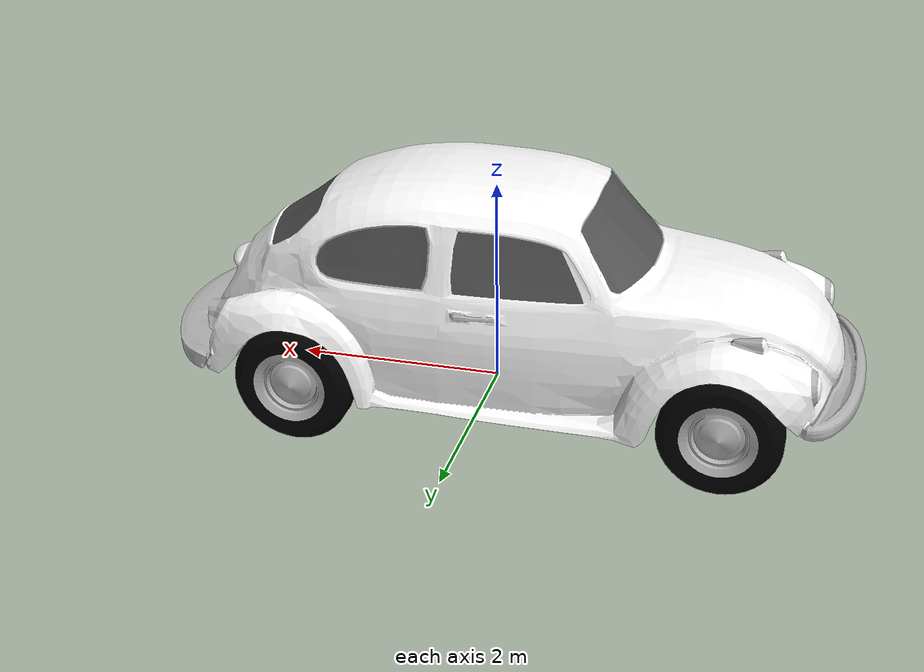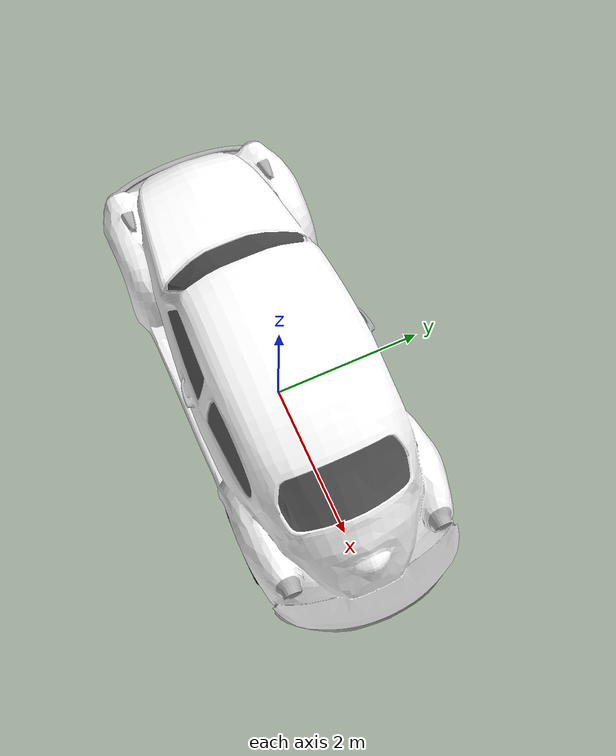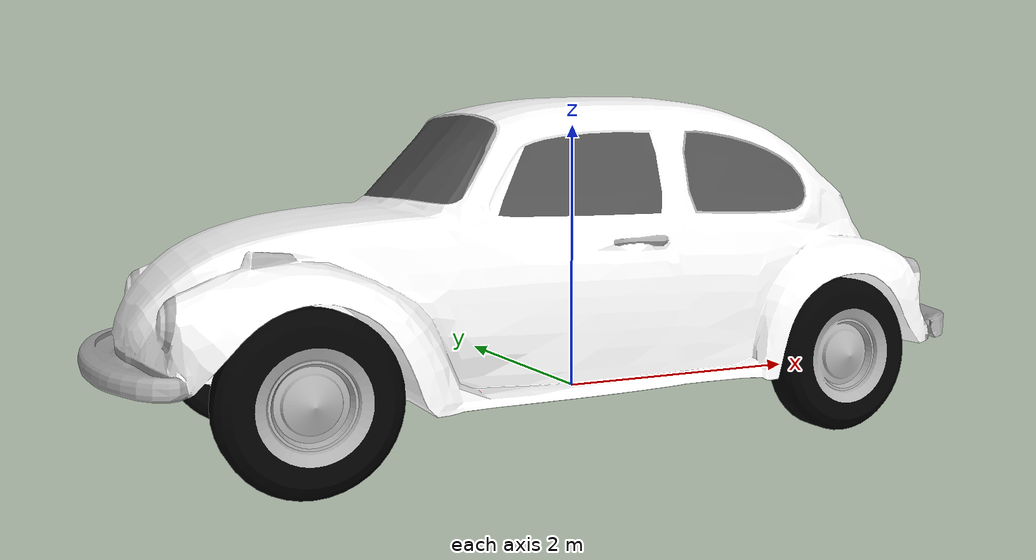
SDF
<?xml version="1.0" ?>
<sdf version='1.5'>
  <model name='car2'>
    <static>true</static>
      <link name='link'>
        <pose frame=''>0 0 1.2 0 0 -1.57</pose>

        <visual name='visual'>
        <cast_shadows>false</cast_shadows>
          <geometry>
            <mesh>
              <scale>0.005 0.005 0.005</scale>
              <uri>model://car2/meshes/car2.dae</uri>
            </mesh>
          </geometry>

        </visual>
      </link>
  </model>
</sdf>
